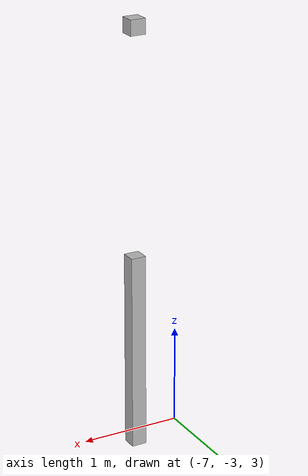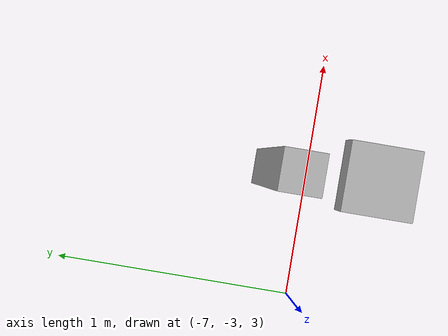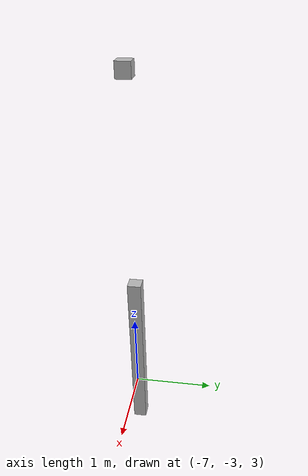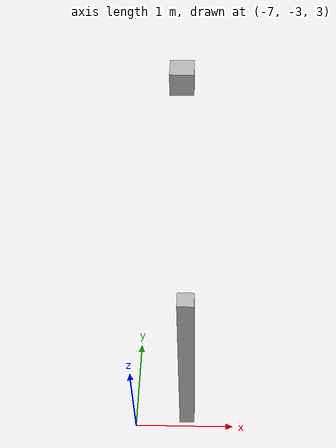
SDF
<sdf version="1.7">
 <world name="default">
  <model name="orthogonal_747_2.000.15_TS">
   <static>1</static>
   <link name="z_link_3_1_0">
    <inertial>
     <mass>1</mass>
     <inertia>
      <ixx>0.166667</ixx>
      <ixy>0</ixy>
      <ixz>0</ixz>
      <iyy>0.166667</iyy>
      <iyz>0</iyz>
      <izz>0.166667</izz>
     </inertia>
    </inertial>
    <pose>0 2.15 6.45 0 -0 0</pose>
    <visual name="visual_0">
     <laser_retro>2794</laser_retro>
     <geometry><box><size>0.15 1e-06 2</size></box></geometry>
     <material>
      <script><name>Gazebo/Grey</name><uri>file://media/materials/scripts/gazebo.material</uri></script>
      <shader type="pixel"><normal_map>__default__</normal_map></shader>
      <ambient>0.678 0.498 0.659 1</ambient>
      <diffuse>0.7 0.7 0.7 1</diffuse>
      <specular>0.01 0.01 0.01 1</specular>
      <emissive>0 0 0 1</emissive>
     </material>
     <pose>0 -0.075 0 0 -0 0</pose>
     <transparency>1</transparency>
    </visual>
    <visual name="visual_1">
     <laser_retro>2795</laser_retro>
     <geometry><box><size>0.15 1e-06 2</size></box></geometry>
     <material>
      <script><name>Gazebo/Grey</name><uri>file://media/materials/scripts/gazebo.material</uri></script>
      <shader type="pixel"><normal_map>__default__</normal_map></shader>
      <ambient>0.447 0.624 0.812 1</ambient>
      <diffuse>0.7 0.7 0.7 1</diffuse>
      <specular>0.01 0.01 0.01 1</specular>
      <emissive>0 0 0 1</emissive>
     </material>
     <pose>0 0.075 0 0 -0 0</pose>
     <transparency>1</transparency>
    </visual>
    <visual name="visual_2">
     <laser_retro>2796</laser_retro>
     <geometry><box><size>0.15 0.15 1e-06</size></box></geometry>
     <material>
      <script><name>Gazebo/Grey</name><uri>file://media/materials/scripts/gazebo.material</uri></script>
      <shader type="pixel"><normal_map>__default__</normal_map></shader>
      <ambient>0.988 0.686 0.243 1</ambient>
      <diffuse>0.7 0.7 0.7 1</diffuse>
      <specular>0.01 0.01 0.01 1</specular>
      <emissive>0 0 0 1</emissive>
     </material>
     <pose>0 0 -1 0 -0 0</pose>
     <transparency>1</transparency>
    </visual>
    <visual name="visual_3">
     <laser_retro>2797</laser_retro>
     <geometry><box><size>1e-06 0.15 2</size></box></geometry>
     <material>
      <script><name>Gazebo/Grey</name><uri>file://media/materials/scripts/gazebo.material</uri></script>
      <shader type="pixel"><normal_map>__default__</normal_map></shader>
      <ambient>0.988 0.914 0.31 1</ambient>
      <diffuse>0.7 0.7 0.7 1</diffuse>
      <specular>0.01 0.01 0.01 1</specular>
      <emissive>0 0 0 1</emissive>
     </material>
     <pose>0.075 0 0 0 -0 0</pose>
     <transparency>1</transparency>
    </visual>
    <visual name="visual_4">
     <laser_retro>2798</laser_retro>
     <geometry><box><size>0.15 0.15 1e-06</size></box></geometry>
     <material>
      <script><name>Gazebo/Grey</name><uri>file://media/materials/scripts/gazebo.material</uri></script>
      <shader type="pixel"><normal_map>__default__</normal_map></shader>
      <ambient>0.937 0.161 0.161 1</ambient>
      <diffuse>0.7 0.7 0.7 1</diffuse>
      <specular>0.01 0.01 0.01 1</specular>
      <emissive>0 0 0 1</emissive>
     </material>
     <pose>0 0 1 0 -0 0</pose>
     <transparency>1</transparency>
    </visual>
    <visual name="visual_5">
     <laser_retro>2799</laser_retro>
     <geometry><box><size>1e-06 0.15 2</size></box></geometry>
     <material>
      <script><name>Gazebo/Grey</name><uri>file://media/materials/scripts/gazebo.material</uri></script>
      <shader type="pixel"><normal_map>__default__</normal_map></shader>
      <ambient>0.541 0.886 0.204 1</ambient>
      <diffuse>0.7 0.7 0.7 1</diffuse>
      <specular>0.01 0.01 0.01 1</specular>
      <emissive>0 0 0 1</emissive>
     </material>
     <pose>-0.075 0 0 0 -0 0</pose>
     <transparency>1</transparency>
    </visual>
    <visual name="visual_texture">
     <geometry><box><size>0.149985 0.149985 1.9998</size></box></geometry>
     <material>
      <script>
       <uri>model://BASE_MODELS/simple_block_v2_textured/materials/scripts</uri>
       <uri>model://BASE_MODELS/simple_block_v2_textured/materials/textures</uri>
       <name>metal</name>
      </script>
     </material>
     <laser_retro>2800</laser_retro>
    </visual>
    <collision name="collision">
     <geometry><box><size>0.15 0.15 2</size></box></geometry>
     <surface>
      <friction>
       <ode><mu>1</mu><mu2>1</mu2><fdir1>0 0 0</fdir1><slip1>0</slip1><slip2>0</slip2></ode>
       <torsional>
        <coefficient>1</coefficient>
        <patch_radius>0</patch_radius>
        <surface_radius>0</surface_radius>
        <use_patch_radius>1</use_patch_radius>
        <ode><slip>0</slip></ode>
       </torsional>
      </friction>
      <bounce><restitution_coefficient>0</restitution_coefficient><threshold>1e+06</threshold></bounce>
      <contact>
       <collide_without_contact>0</collide_without_contact>
       <collide_without_contact_bitmask>1</collide_without_contact_bitmask>
       <collide_bitmask>1</collide_bitmask>
       <ode>
        <soft_cfm>0</soft_cfm>
        <soft_erp>0.2</soft_erp>
        <kp>1e+13</kp>
        <kd>1</kd>
        <max_vel>0.01</max_vel>
        <min_depth>0</min_depth>
       </ode>
       <bullet>
        <split_impulse>1</split_impulse>
        <split_impulse_penetration_threshold>-0.01</split_impulse_penetration_threshold>
        <soft_cfm>0</soft_cfm>
        <soft_erp>0.2</soft_erp>
        <kp>1e+13</kp>
        <kd>1</kd>
       </bullet>
      </contact>
     </surface>
    </collision>
   </link>
   <link name="u_link_4_1_0">
    <inertial>
     <mass>1</mass>
     <inertia>
      <ixx>0.166667</ixx>
      <ixy>0</ixy>
      <ixz>0</ixz>
      <iyy>0.166667</iyy>
      <iyz>0</iyz>
      <izz>0.166667</izz>
     </inertia>
    </inertial>
    <pose>0 2.15 9.675 0 -0 0</pose>
    <visual name="visual_0">
     <laser_retro>3690</laser_retro>
     <geometry><box><size>0.15 1e-06 0.15</size></box></geometry>
     <material>
      <script><name>Gazebo/Grey</name><uri>file://media/materials/scripts/gazebo.material</uri></script>
      <shader type="pixel"><normal_map>__default__</normal_map></shader>
      <ambient>0.678 0.498 0.659 1</ambient>
      <diffuse>0.7 0.7 0.7 1</diffuse>
      <specular>0.01 0.01 0.01 1</specular>
      <emissive>0 0 0 1</emissive>
     </material>
     <pose>0 -0.075 0 0 -0 0</pose>
     <transparency>1</transparency>
    </visual>
    <visual name="visual_1">
     <laser_retro>3691</laser_retro>
     <geometry><box><size>0.15 1e-06 0.15</size></box></geometry>
     <material>
      <script><name>Gazebo/Grey</name><uri>file://media/materials/scripts/gazebo.material</uri></script>
      <shader type="pixel"><normal_map>__default__</normal_map></shader>
      <ambient>0.447 0.624 0.812 1</ambient>
      <diffuse>0.7 0.7 0.7 1</diffuse>
      <specular>0.01 0.01 0.01 1</specular>
      <emissive>0 0 0 1</emissive>
     </material>
     <pose>0 0.075 0 0 -0 0</pose>
     <transparency>1</transparency>
    </visual>
    <visual name="visual_2">
     <laser_retro>3692</laser_retro>
     <geometry><box><size>0.15 0.15 1e-06</size></box></geometry>
     <material>
      <script><name>Gazebo/Grey</name><uri>file://media/materials/scripts/gazebo.material</uri></script>
      <shader type="pixel"><normal_map>__default__</normal_map></shader>
      <ambient>0.988 0.686 0.243 1</ambient>
      <diffuse>0.7 0.7 0.7 1</diffuse>
      <specular>0.01 0.01 0.01 1</specular>
      <emissive>0 0 0 1</emissive>
     </material>
     <pose>0 0 -0.075 0 -0 0</pose>
     <transparency>1</transparency>
    </visual>
    <visual name="visual_3">
     <laser_retro>3693</laser_retro>
     <geometry><box><size>1e-06 0.15 0.15</size></box></geometry>
     <material>
      <script><name>Gazebo/Grey</name><uri>file://media/materials/scripts/gazebo.material</uri></script>
      <shader type="pixel"><normal_map>__default__</normal_map></shader>
      <ambient>0.988 0.914 0.31 1</ambient>
      <diffuse>0.7 0.7 0.7 1</diffuse>
      <specular>0.01 0.01 0.01 1</specular>
      <emissive>0 0 0 1</emissive>
     </material>
     <pose>0.075 0 0 0 -0 0</pose>
     <transparency>1</transparency>
    </visual>
    <visual name="visual_4">
     <laser_retro>3694</laser_retro>
     <geometry><box><size>0.15 0.15 1e-06</size></box></geometry>
     <material>
      <script><name>Gazebo/Grey</name><uri>file://media/materials/scripts/gazebo.material</uri></script>
      <shader type="pixel"><normal_map>__default__</normal_map></shader>
      <ambient>0.937 0.161 0.161 1</ambient>
      <diffuse>0.7 0.7 0.7 1</diffuse>
      <specular>0.01 0.01 0.01 1</specular>
      <emissive>0 0 0 1</emissive>
     </material>
     <pose>0 0 0.075 0 -0 0</pose>
     <transparency>1</transparency>
    </visual>
    <visual name="visual_5">
     <laser_retro>3695</laser_retro>
     <geometry><box><size>1e-06 0.15 0.15</size></box></geometry>
     <material>
      <script><name>Gazebo/Grey</name><uri>file://media/materials/scripts/gazebo.material</uri></script>
      <shader type="pixel"><normal_map>__default__</normal_map></shader>
      <ambient>0.541 0.886 0.204 1</ambient>
      <diffuse>0.7 0.7 0.7 1</diffuse>
      <specular>0.01 0.01 0.01 1</specular>
      <emissive>0 0 0 1</emissive>
     </material>
     <pose>-0.075 0 0 0 -0 0</pose>
     <transparency>1</transparency>
    </visual>
    <visual name="visual_texture">
     <geometry><box><size>0.149985 0.149985 0.149985</size></box></geometry>
     <material>
      <script>
       <uri>model://BASE_MODELS/simple_block_v2_textured/materials/scripts</uri>
       <uri>model://BASE_MODELS/simple_block_v2_textured/materials/textures</uri>
       <name>metal</name>
      </script>
     </material>
     <laser_retro>3696</laser_retro>
    </visual>
    <collision name="collision">
     <geometry><box><size>0.15 0.15 0.15</size></box></geometry>
     <surface>
      <friction>
       <ode><mu>1</mu><mu2>1</mu2><fdir1>0 0 0</fdir1><slip1>0</slip1><slip2>0</slip2></ode>
       <torsional>
        <coefficient>1</coefficient>
        <patch_radius>0</patch_radius>
        <surface_radius>0</surface_radius>
        <use_patch_radius>1</use_patch_radius>
        <ode><slip>0</slip></ode>
       </torsional>
      </friction>
      <bounce><restitution_coefficient>0</restitution_coefficient><threshold>1e+06</threshold></bounce>
      <contact>
       <collide_without_contact>0</collide_without_contact>
       <collide_without_contact_bitmask>1</collide_without_contact_bitmask>
       <collide_bitmask>1</collide_bitmask>
       <ode>
        <soft_cfm>0</soft_cfm>
        <soft_erp>0.2</soft_erp>
        <kp>1e+13</kp>
        <kd>1</kd>
        <max_vel>0.01</max_vel>
        <min_depth>0</min_depth>
       </ode>
       <bullet>
        <split_impulse>1</split_impulse>
        <split_impulse_penetration_threshold>-0.01</split_impulse_penetration_threshold>
        <soft_cfm>0</soft_cfm>
        <soft_erp>0.2</soft_erp>
        <kp>1e+13</kp>
        <kd>1</kd>
       </bullet>
      </contact>
     </surface>
    </collision>
   </link>
   <pose>-6.47624 -5 -2.5 0 -0 0</pose>
  </model>
 </world>
</sdf>
